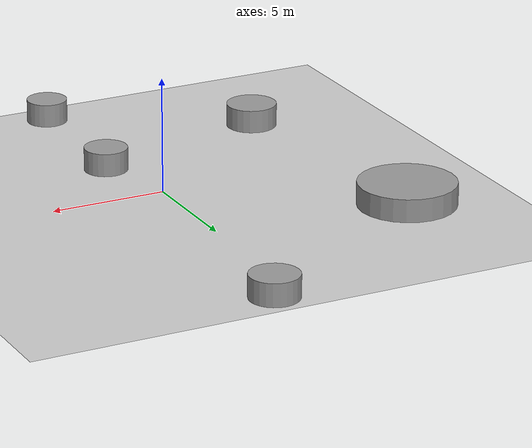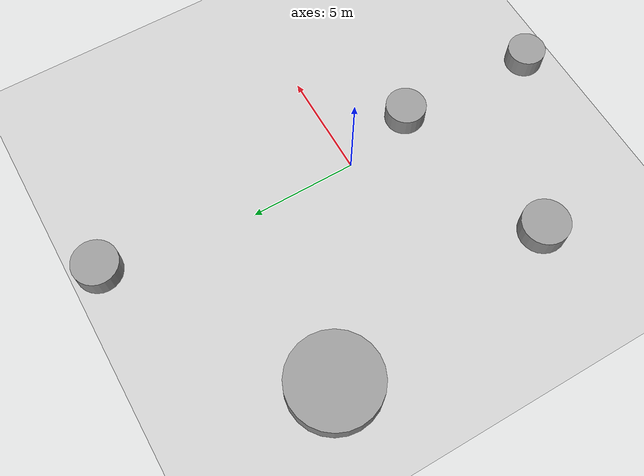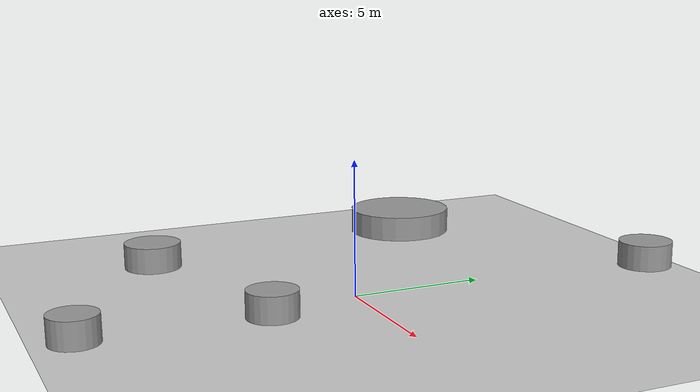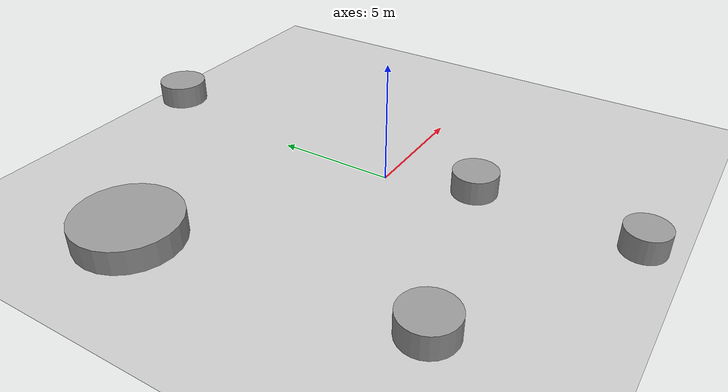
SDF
<sdf version="1.6">
 <world name="default">
  <light name="sun" type="directional">
   <pose>0 0 10 0 -0 0</pose>
   <diffuse>0.8 0.8 0.8 1</diffuse>
   <specular>0.2 0.2 0.2 1</specular>
   <attenuation>
    <range>1000</range>
    <constant>0.9</constant>
    <linear>0.01</linear>
    <quadratic>0.001</quadratic>
   </attenuation>
   <direction>-0.5 0.1 -0.9</direction>
  </light>
  <gravity>0 0 -9.8</gravity>
  <magnetic_field>6e-06 2.3e-05 -4.2e-05</magnetic_field>
  <atmosphere type="adiabatic"/>
  <physics name="default_physics" default="0" type="ode">
   <max_step_size>0.001</max_step_size>
   <real_time_factor>1</real_time_factor>
   <real_time_update_rate>1000</real_time_update_rate>
  </physics>
  <scene><ambient>0.4 0.4 0.4 1</ambient><background>0.7 0.7 0.7 1</background><shadows>1</shadows></scene>
  <spherical_coordinates>
   <surface_model>EARTH_WGS84</surface_model>
   <latitude_deg>0</latitude_deg>
   <longitude_deg>0</longitude_deg>
   <elevation>0</elevation>
   <heading_deg>0</heading_deg>
  </spherical_coordinates>
  <model name="my_ground_plane">
   <static>1</static>
   <link name="link">
    <collision name="collision">
     <geometry><plane><normal>0 0 1</normal><size>100 100</size></plane></geometry>
     <surface><friction><ode><mu>100</mu><mu2>50</mu2></ode></friction></surface>
    </collision>
    <visual name="visual">
     <cast_shadows>0</cast_shadows>
     <geometry><plane><normal>0 0 1</normal><size>25 25</size></plane></geometry>
     <material>
      <script>
       <uri>model://my_ground_plane/materials/scripts</uri>
       <uri>model://my_ground_plane/materials/textures</uri>
       <name>MyGroundPlane/Image</name>
      </script>
     </material>
    </visual>
   </link>
   <pose>-0.492392 0.861814 0 0 -0 0</pose>
  </model>
  <model name="unit_cylinder_0">
   <pose>1.01602 12.0649 0.499995 -5e-06 5e-06 4.2e-05</pose>
   <link name="link">
    <inertial>
     <mass>1</mass>
     <inertia><ixx>0.145833</ixx><ixy>0</ixy><ixz>0</ixz><iyy>0.145833</iyy><iyz>0</iyz><izz>0.125</izz></inertia>
    </inertial>
    <collision name="collision">
     <geometry><cylinder><radius>1.05332</radius><length>1</length></cylinder></geometry>
    </collision>
    <visual name="visual">
     <geometry><cylinder><radius>1.05332</radius><length>1</length></cylinder></geometry>
     <material>
      <script><name>Gazebo/Grey</name><uri>file://media/materials/scripts/gazebo.material</uri></script>
     </material>
    </visual>
   </link>
  </model>
  <model name="unit_cylinder_2">
   <pose>-7.0162 -5.62232 0.499995 4e-06 -4e-06 2.4e-05</pose>
   <link name="link">
    <inertial>
     <mass>1</mass>
     <inertia><ixx>0.145833</ixx><ixy>0</ixy><ixz>0</ixz><iyy>0.145833</iyy><iyz>0</iyz><izz>0.125</izz></inertia>
    </inertial>
    <collision name="collision">
     <geometry><cylinder><radius>1.09722</radius><length>1</length></cylinder></geometry>
    </collision>
    <visual name="visual">
     <geometry><cylinder><radius>1.09722</radius><length>1</length></cylinder></geometry>
     <material>
      <script><name>Gazebo/Grey</name><uri>file://media/materials/scripts/gazebo.material</uri></script>
     </material>
    </visual>
   </link>
  </model>
  <model name="unit_cylinder_1">
   <pose>0.78111 -10.1621 0.499995 -5e-06 -5e-06 1e-06</pose>
   <link name="link">
    <inertial>
     <mass>1</mass>
     <inertia><ixx>0.145833</ixx><ixy>0</ixy><ixz>0</ixz><iyy>0.145833</iyy><iyz>0</iyz><izz>0.125</izz></inertia>
    </inertial>
    <collision name="collision">
     <geometry><cylinder><radius>0.883455</radius><length>1</length></cylinder></geometry>
    </collision>
    <visual name="visual">
     <geometry><cylinder><radius>0.883455</radius><length>1</length></cylinder></geometry>
     <material>
      <script><name>Gazebo/Grey</name><uri>file://media/materials/scripts/gazebo.material</uri></script>
     </material>
    </visual>
   </link>
  </model>
  <model name="unit_cylinder_3">
   <pose>0.990913 -3.5061 0.499994 6e-06 -6e-06 -1e-06</pose>
   <link name="link">
    <inertial>
     <mass>1</mass>
     <inertia><ixx>0.145833</ixx><ixy>0</ixy><ixz>0</ixz><iyy>0.145833</iyy><iyz>0</iyz><izz>0.125</izz></inertia>
    </inertial>
    <collision name="collision">
     <geometry><cylinder><radius>0.939461</radius><length>1</length></cylinder></geometry>
    </collision>
    <visual name="visual">
     <geometry><cylinder><radius>0.939461</radius><length>1</length></cylinder></geometry>
     <material>
      <script><name>Gazebo/Grey</name><uri>file://media/materials/scripts/gazebo.material</uri></script>
     </material>
    </visual>
   </link>
  </model>
  <model name="unit_cylinder">
   <pose>-8.40735 5.79999 0.499996 -2e-06 -2e-06 -9.4e-05</pose>
   <link name="link">
    <inertial>
     <mass>1</mass>
     <inertia><ixx>0.145833</ixx><ixy>0</ixy><ixz>0</ixz><iyy>0.145833</iyy><iyz>0</iyz><izz>0.125</izz></inertia>
    </inertial>
    <collision name="collision">
     <geometry><cylinder><radius>2.1125</radius><length>1</length></cylinder></geometry>
    </collision>
    <visual name="visual">
     <geometry><cylinder><radius>2.1125</radius><length>1</length></cylinder></geometry>
     <material>
      <script><name>Gazebo/Grey</name><uri>file://media/materials/scripts/gazebo.material</uri></script>
     </material>
    </visual>
   </link>
  </model>
 </world>
</sdf>
